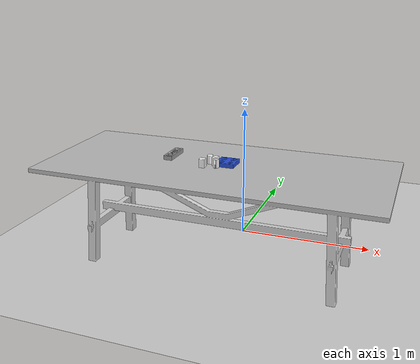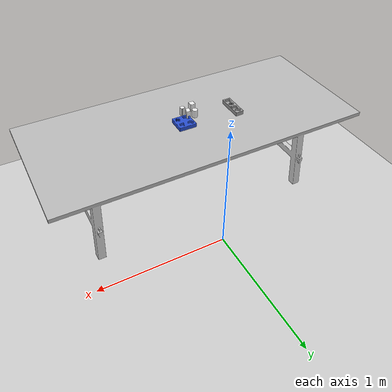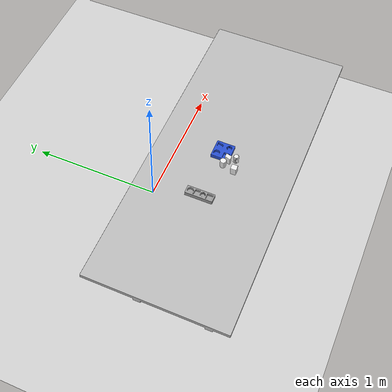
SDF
<sdf version="1.7">
 <world name="ur5_world">
  <plugin name="ros_link_attacher_plugin" filename="libgazebo_ros_link_attacher.so"/>
  <gravity>0 0 -9.81</gravity>
  <physics name="default_physics" default="0" type="ode">
   <max_step_size>0.001</max_step_size>
   <real_time_factor>1</real_time_factor>
   <real_time_update_rate>1000</real_time_update_rate>
  </physics>
  <scene><ambient>0.4 0.4 0.4 1</ambient><background>0.7 0.7 0.7 1</background><shadows>0</shadows></scene>
  <light name="sun" type="directional">
   <pose>0 0 10 0 -0 0</pose>
   <diffuse>0.8 0.8 0.8 1</diffuse>
   <specular>0.2 0.2 0.2 1</specular>
   <attenuation>
    <range>1000</range>
    <constant>0.9</constant>
    <linear>0.01</linear>
    <quadratic>0.001</quadratic>
   </attenuation>
   <direction>-0.5 0.1 -0.9</direction>
   <spot><inner_angle>0</inner_angle><outer_angle>0</outer_angle><falloff>0</falloff></spot>
  </light>
  <model name="ground_plane">
   <static>1</static>
   <link name="link">
    <collision name="collision">
     <geometry><plane><normal>0 0 1</normal><size>100 100</size></plane></geometry>
     <surface>
      <contact><collide_bitmask>65535</collide_bitmask></contact>
      <friction><ode><mu>100</mu><mu2>50</mu2></ode></friction>
     </surface>
    </collision>
    <visual name="visual">
     <cast_shadows>0</cast_shadows>
     <geometry><plane><normal>0 0 1</normal><size>100 100</size></plane></geometry>
     <material>
      <script><uri>file://media/materials/scripts/gazebo.material</uri><name>Gazebo/Grey</name></script>
     </material>
    </visual>
   </link>
  </model>
  <model name="modern_table">
   <static>1</static>
   <frame name="modern_table::__model__" attached_to="modern_table::link">
    <pose relative_to="__model__">0 -0.558 0 0 0 -3.14159</pose>
   </frame>
   <static>1</static>
   <link name="modern_table::link">
    <pose relative_to="modern_table::__model__">0 0 0.74 0 -0 0</pose>
    <collision name="surface">
     <pose>0 0 -0.015 0 -0 0</pose>
     <geometry><box><size>2.35 1 0.03</size></box></geometry>
    </collision>
    <visual name="visual">
     <geometry><mesh><uri>model://modern_table/meshes/modern_table.dae</uri></mesh></geometry>
     <light type="directional" name="some_light">
      <diffuse>0.7 0.7 0.7 0</diffuse>
      <specular>1 1 1 0</specular>
      <direction>-1 -1 -1</direction>
     </light>
    </visual>
   </link>
  </model>
  <magnetic_field>6e-06 2.3e-05 -4.2e-05</magnetic_field>
  <atmosphere type="adiabatic"/>
  <spherical_coordinates>
   <surface_model>EARTH_WGS84</surface_model>
   <latitude_deg>0</latitude_deg>
   <longitude_deg>0</longitude_deg>
   <elevation>0</elevation>
   <heading_deg>0</heading_deg>
  </spherical_coordinates>
  <model name="_spawn"><static>1</static><link name="link"/><pose>-0.35 -0.42 0.74 0 -0 0</pose></model>
  <model name="cuboid_1">
   <static>0</static>
   <link name="link">
    <inertial>
     <pose>20 20 30 0 -0 0</pose>
     <mass>1</mass>
     <inertia>
      <ixx>4.13419e+07</ixx>
      <ixy>1.23183</ixy>
      <ixz>-0.152254</ixz>
      <iyy>4.13419e+07</iyy>
      <iyz>-0.152254</iyz>
      <izz>2.54281e+07</izz>
     </inertia>
    </inertial>
    <visual name="visual">
     <geometry><mesh><uri>model://cuboid/meshes/Quader.stl</uri><scale>0.001 0.001 0.001</scale></mesh></geometry>
     <material>
      <script><uri>file://media/materials/scripts/gazebo.material</uri><name>Gazebo/White</name></script>
     </material>
    </visual>
    <collision name="collision">
     <geometry><mesh><uri>model://cuboid/meshes/Quader.stl</uri><scale>0.001 0.001 0.001</scale></mesh></geometry>
    </collision>
   </link>
   <pose>-0.077247 -0.654858 0.749929 -3.2e-05 3.2e-05 -0</pose>
  </model>
  <model name="blueBox_1">
   <static>0</static>
   <link name="link">
    <inertial>
     <pose>73.3895 75.1224 13.5784 0 -0 0</pose>
     <mass>1</mass>
     <inertia>
      <ixx>6.01094e+08</ixx>
      <ixy>1.60869e+07</ixy>
      <ixz>4.08638e+06</ixz>
      <iyy>6.02592e+08</iyy>
      <iyz>-300132</iyz>
      <izz>1.14242e+09</izz>
     </inertia>
    </inertial>
    <visual name="visual">
     <geometry>
      <mesh><uri>model://blueBox/meshes/Aufnahme_Quadratisch.stl</uri><scale>0.001 0.001 0.001</scale></mesh>
     </geometry>
     <material>
      <script><uri>file://media/materials/scripts/gazebo.material</uri><name>Gazebo/Blue</name></script>
     </material>
    </visual>
    <collision name="collision">
     <geometry>
      <mesh><uri>model://blueBox/meshes/Aufnahme_Quadratisch.stl</uri><scale>0.001 0.001 0.001</scale></mesh>
     </geometry>
    </collision>
   </link>
   <pose>0.052345 -0.526428 0.740001 -2e-06 2e-06 3.14159</pose>
  </model>
  <model name="grayBox_1">
   <static>0</static>
   <link name="link">
    <inertial>
     <pose>30 96.8405 17.3283 0 -0 0</pose>
     <mass>1</mass>
     <inertia>
      <ixx>7.99328e+08</ixx>
      <ixy>1.06454e+06</ixy>
      <ixz>-2.52018</ixz>
      <iyy>1.09614e+08</iyy>
      <iyz>-1.16998e+06</iyz>
      <izz>8.71956e+08</izz>
     </inertia>
    </inertial>
    <visual name="visual">
     <geometry>
      <mesh><uri>model://grayBox/meshes/grayBox.stl</uri><scale>0.001 0.001 0.001</scale></mesh>
     </geometry>
     <material>
      <script><uri>file://media/materials/scripts/gazebo.material</uri><name>Gazebo/Gray</name></script>
     </material>
    </visual>
    <collision name="collision">
     <geometry>
      <mesh><uri>model://grayBox/meshes/grayBox.stl</uri><scale>0.001 0.001 0.001</scale></mesh>
     </geometry>
    </collision>
   </link>
   <pose>-0.35 -0.52 0.770001 7e-06 -1.5e-05 3.14067</pose>
  </model>
  <model name="octagon_1">
   <static>0</static>
   <link name="link">
    <inertial>
     <pose>0 0 30 0 -0 0</pose>
     <mass>1</mass>
     <inertia>
      <ixx>3.21251e+07</ixx>
      <ixy>0.000625</ixy>
      <ixz>0</ixz>
      <iyy>3.21251e+07</iyy>
      <iyz>0</iyz>
      <izz>1.67622e+07</izz>
     </inertia>
    </inertial>
    <visual name="visual">
     <geometry>
      <mesh><uri>model://octagon/meshes/Regelmaessiges_Oktagon.stl</uri><scale>0.001 0.001 0.001</scale></mesh>
     </geometry>
     <material>
      <script><uri>file://media/materials/scripts/gazebo.material</uri><name>Gazebo/White</name></script>
     </material>
    </visual>
    <collision name="collision">
     <geometry>
      <mesh><uri>model://octagon/meshes/Regelmaessiges_Oktagon.stl</uri><scale>0.001 0.001 0.001</scale></mesh>
     </geometry>
    </collision>
   </link>
   <pose>-0.056467 -0.567871 0.74991 0 -0 0</pose>
  </model>
  <model name="parallelogram_1">
   <static>0</static>
   <link name="link">
    <inertial>
     <pose>20.35 19.99 30 0 -0 0</pose>
     <mass>1</mass>
     <inertia>
      <ixx>3.09585e+07</ixx>
      <ixy>-2.55988e+06</ixy>
      <ixz>-5.53146</ixz>
      <iyy>2.74802e+07</iyy>
      <iyz>6.2304</iyz>
      <izz>1.55577e+07</izz>
     </inertia>
    </inertial>
    <visual name="visual">
     <geometry>
      <mesh><uri>model://parallelogram/meshes/Parallelogramm.stl</uri><scale>0.001 0.001 0.001</scale></mesh>
     </geometry>
     <material>
      <script><uri>file://media/materials/scripts/gazebo.material</uri><name>Gazebo/White</name></script>
     </material>
    </visual>
    <collision name="collision">
     <geometry>
      <mesh><uri>model://parallelogram/meshes/Parallelogramm.stl</uri><scale>0.001 0.001 0.001</scale></mesh>
     </geometry>
    </collision>
   </link>
   <pose>-0.010346 -0.587012 0.750004 -4e-05 4.6e-05 -0</pose>
  </model>
  <model name="star_1">
   <static>0</static>
   <link name="link">
    <inertial>
     <pose>0 0 30 0 -0 0</pose>
     <mass>1</mass>
     <inertia>
      <ixx>1.94751e+07</ixx>
      <ixy>0.00082</ixy>
      <ixz>-0.006821</ixz>
      <iyy>1.94751e+07</iyy>
      <iyz>-0.000233</iyz>
      <izz>7.62449e+06</izz>
     </inertia>
    </inertial>
    <visual name="visual">
     <geometry><mesh><uri>model://star/meshes/Stern.stl</uri><scale>0.001 0.001 0.001</scale></mesh></geometry>
     <material>
      <script><uri>file://media/materials/scripts/gazebo.material</uri><name>Gazebo/White</name></script>
     </material>
    </visual>
    <collision name="collision">
     <geometry><mesh><uri>model://star/meshes/Stern.stl</uri><scale>0.001 0.001 0.001</scale></mesh></geometry>
    </collision>
   </link>
   <pose>0.011386 -0.635924 0.74991 0 -0 0</pose>
  </model>
 </world>
</sdf>
